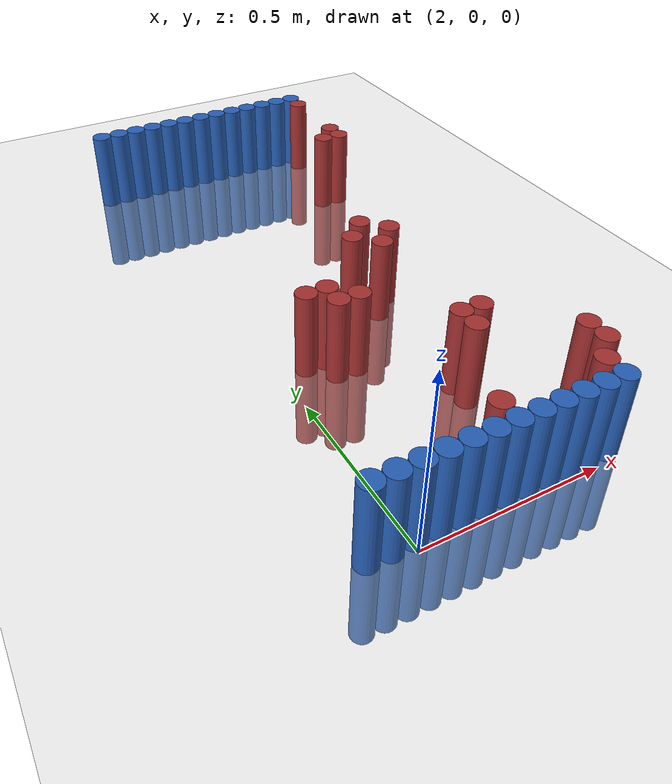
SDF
<sdf version="1.6">
 <world name="default">
  <model name="ground_plane">
   <static>1</static>
   <link name="link">
    <collision name="collision">
     <geometry><plane><normal>0 0 1</normal><size>100 100</size></plane></geometry>
     <surface><friction><ode><mu>100</mu><mu2>50</mu2></ode></friction></surface>
    </collision>
    <visual name="visual">
     <cast_shadows>0</cast_shadows>
     <geometry><plane><normal>0 0 1</normal><size>100 100</size></plane></geometry>
     <material>
      <script><uri>file://media/materials/scripts/gazebo.material</uri><name>Gazebo/Grey</name></script>
     </material>
    </visual>
   </link>
  </model>
  <model name="unit_cylinder_89">
   <static>1</static>
   <pose>1.890000 0.030000 0.000000 0.000000 0.000000 0.000000</pose>
   <link name="link">
    <inertial>
     <mass>1</mass>
     <inertia><ixx>0.145833</ixx><ixy>0</ixy><ixz>0</ixz><iyy>0.145833</iyy><iyz>0</iyz><izz>0.125</izz></inertia>
    </inertial>
    <collision name="collision">
     <geometry><cylinder><radius>0.030000</radius><length>0.5</length></cylinder></geometry>
    </collision>
    <visual name="visual">
     <geometry><cylinder><radius>0.030000</radius><length>0.5</length></cylinder></geometry>
     <material>
      <ambient>0.152000 0.379000 0.720000 1</ambient>
      <diffuse>0.152000 0.379000 0.720000 1</diffuse>
     </material>
     <material>
      <script><name>Gazebo/Grey</name><uri>file://media/materials/scripts/gazebo.material</uri></script>
     </material>
    </visual>
   </link>
  </model>
  <model name="unit_cylinder_90">
   <static>1</static>
   <pose>1.890000 1.770000 0.000000 0.000000 0.000000 0.000000</pose>
   <link name="link">
    <inertial>
     <mass>1</mass>
     <inertia><ixx>0.145833</ixx><ixy>0</ixy><ixz>0</ixz><iyy>0.145833</iyy><iyz>0</iyz><izz>0.125</izz></inertia>
    </inertial>
    <collision name="collision">
     <geometry><cylinder><radius>0.030000</radius><length>0.5</length></cylinder></geometry>
    </collision>
    <visual name="visual">
     <geometry><cylinder><radius>0.030000</radius><length>0.5</length></cylinder></geometry>
     <material>
      <ambient>0.152000 0.379000 0.720000 1</ambient>
      <diffuse>0.152000 0.379000 0.720000 1</diffuse>
     </material>
     <material>
      <script><name>Gazebo/Grey</name><uri>file://media/materials/scripts/gazebo.material</uri></script>
     </material>
    </visual>
   </link>
  </model>
  <model name="unit_cylinder_91">
   <static>1</static>
   <pose>1.950000 0.030000 0.000000 0.000000 0.000000 0.000000</pose>
   <link name="link">
    <inertial>
     <mass>1</mass>
     <inertia><ixx>0.145833</ixx><ixy>0</ixy><ixz>0</ixz><iyy>0.145833</iyy><iyz>0</iyz><izz>0.125</izz></inertia>
    </inertial>
    <collision name="collision">
     <geometry><cylinder><radius>0.030000</radius><length>0.5</length></cylinder></geometry>
    </collision>
    <visual name="visual">
     <geometry><cylinder><radius>0.030000</radius><length>0.5</length></cylinder></geometry>
     <material>
      <ambient>0.152000 0.379000 0.720000 1</ambient>
      <diffuse>0.152000 0.379000 0.720000 1</diffuse>
     </material>
     <material>
      <script><name>Gazebo/Grey</name><uri>file://media/materials/scripts/gazebo.material</uri></script>
     </material>
    </visual>
   </link>
  </model>
  <model name="unit_cylinder_92">
   <static>1</static>
   <pose>1.950000 1.770000 0.000000 0.000000 0.000000 0.000000</pose>
   <link name="link">
    <inertial>
     <mass>1</mass>
     <inertia><ixx>0.145833</ixx><ixy>0</ixy><ixz>0</ixz><iyy>0.145833</iyy><iyz>0</iyz><izz>0.125</izz></inertia>
    </inertial>
    <collision name="collision">
     <geometry><cylinder><radius>0.030000</radius><length>0.5</length></cylinder></geometry>
    </collision>
    <visual name="visual">
     <geometry><cylinder><radius>0.030000</radius><length>0.5</length></cylinder></geometry>
     <material>
      <ambient>0.152000 0.379000 0.720000 1</ambient>
      <diffuse>0.152000 0.379000 0.720000 1</diffuse>
     </material>
     <material>
      <script><name>Gazebo/Grey</name><uri>file://media/materials/scripts/gazebo.material</uri></script>
     </material>
    </visual>
   </link>
  </model>
  <model name="unit_cylinder_93">
   <static>1</static>
   <pose>2.010000 0.030000 0.000000 0.000000 0.000000 0.000000</pose>
   <link name="link">
    <inertial>
     <mass>1</mass>
     <inertia><ixx>0.145833</ixx><ixy>0</ixy><ixz>0</ixz><iyy>0.145833</iyy><iyz>0</iyz><izz>0.125</izz></inertia>
    </inertial>
    <collision name="collision">
     <geometry><cylinder><radius>0.030000</radius><length>0.5</length></cylinder></geometry>
    </collision>
    <visual name="visual">
     <geometry><cylinder><radius>0.030000</radius><length>0.5</length></cylinder></geometry>
     <material>
      <ambient>0.152000 0.379000 0.720000 1</ambient>
      <diffuse>0.152000 0.379000 0.720000 1</diffuse>
     </material>
     <material>
      <script><name>Gazebo/Grey</name><uri>file://media/materials/scripts/gazebo.material</uri></script>
     </material>
    </visual>
   </link>
  </model>
  <model name="unit_cylinder_94">
   <static>1</static>
   <pose>2.010000 1.770000 0.000000 0.000000 0.000000 0.000000</pose>
   <link name="link">
    <inertial>
     <mass>1</mass>
     <inertia><ixx>0.145833</ixx><ixy>0</ixy><ixz>0</ixz><iyy>0.145833</iyy><iyz>0</iyz><izz>0.125</izz></inertia>
    </inertial>
    <collision name="collision">
     <geometry><cylinder><radius>0.030000</radius><length>0.5</length></cylinder></geometry>
    </collision>
    <visual name="visual">
     <geometry><cylinder><radius>0.030000</radius><length>0.5</length></cylinder></geometry>
     <material>
      <ambient>0.152000 0.379000 0.720000 1</ambient>
      <diffuse>0.152000 0.379000 0.720000 1</diffuse>
     </material>
     <material>
      <script><name>Gazebo/Grey</name><uri>file://media/materials/scripts/gazebo.material</uri></script>
     </material>
    </visual>
   </link>
  </model>
  <model name="unit_cylinder_95">
   <static>1</static>
   <pose>2.070000 1.770000 0.000000 0.000000 0.000000 0.000000</pose>
   <link name="link">
    <inertial>
     <mass>1</mass>
     <inertia><ixx>0.145833</ixx><ixy>0</ixy><ixz>0</ixz><iyy>0.145833</iyy><iyz>0</iyz><izz>0.125</izz></inertia>
    </inertial>
    <collision name="collision">
     <geometry><cylinder><radius>0.030000</radius><length>0.5</length></cylinder></geometry>
    </collision>
    <visual name="visual">
     <geometry><cylinder><radius>0.030000</radius><length>0.5</length></cylinder></geometry>
     <material>
      <ambient>0.152000 0.379000 0.720000 1</ambient>
      <diffuse>0.152000 0.379000 0.720000 1</diffuse>
     </material>
     <material>
      <script><name>Gazebo/Grey</name><uri>file://media/materials/scripts/gazebo.material</uri></script>
     </material>
    </visual>
   </link>
  </model>
  <model name="unit_cylinder_96">
   <static>1</static>
   <pose>2.130000 1.770000 0.000000 0.000000 0.000000 0.000000</pose>
   <link name="link">
    <inertial>
     <mass>1</mass>
     <inertia><ixx>0.145833</ixx><ixy>0</ixy><ixz>0</ixz><iyy>0.145833</iyy><iyz>0</iyz><izz>0.125</izz></inertia>
    </inertial>
    <collision name="collision">
     <geometry><cylinder><radius>0.030000</radius><length>0.5</length></cylinder></geometry>
    </collision>
    <visual name="visual">
     <geometry><cylinder><radius>0.030000</radius><length>0.5</length></cylinder></geometry>
     <material>
      <ambient>0.152000 0.379000 0.720000 1</ambient>
      <diffuse>0.152000 0.379000 0.720000 1</diffuse>
     </material>
     <material>
      <script><name>Gazebo/Grey</name><uri>file://media/materials/scripts/gazebo.material</uri></script>
     </material>
    </visual>
   </link>
  </model>
  <model name="unit_cylinder_97">
   <static>1</static>
   <pose>2.190000 1.770000 0.000000 0.000000 0.000000 0.000000</pose>
   <link name="link">
    <inertial>
     <mass>1</mass>
     <inertia><ixx>0.145833</ixx><ixy>0</ixy><ixz>0</ixz><iyy>0.145833</iyy><iyz>0</iyz><izz>0.125</izz></inertia>
    </inertial>
    <collision name="collision">
     <geometry><cylinder><radius>0.030000</radius><length>0.5</length></cylinder></geometry>
    </collision>
    <visual name="visual">
     <geometry><cylinder><radius>0.030000</radius><length>0.5</length></cylinder></geometry>
     <material>
      <ambient>0.152000 0.379000 0.720000 1</ambient>
      <diffuse>0.152000 0.379000 0.720000 1</diffuse>
     </material>
     <material>
      <script><name>Gazebo/Grey</name><uri>file://media/materials/scripts/gazebo.material</uri></script>
     </material>
    </visual>
   </link>
  </model>
  <model name="unit_cylinder_98">
   <static>1</static>
   <pose>2.250000 1.770000 0.000000 0.000000 0.000000 0.000000</pose>
   <link name="link">
    <inertial>
     <mass>1</mass>
     <inertia><ixx>0.145833</ixx><ixy>0</ixy><ixz>0</ixz><iyy>0.145833</iyy><iyz>0</iyz><izz>0.125</izz></inertia>
    </inertial>
    <collision name="collision">
     <geometry><cylinder><radius>0.030000</radius><length>0.5</length></cylinder></geometry>
    </collision>
    <visual name="visual">
     <geometry><cylinder><radius>0.030000</radius><length>0.5</length></cylinder></geometry>
     <material>
      <ambient>0.152000 0.379000 0.720000 1</ambient>
      <diffuse>0.152000 0.379000 0.720000 1</diffuse>
     </material>
     <material>
      <script><name>Gazebo/Grey</name><uri>file://media/materials/scripts/gazebo.material</uri></script>
     </material>
    </visual>
   </link>
  </model>
  <model name="unit_cylinder_99">
   <static>1</static>
   <pose>2.310000 1.770000 0.000000 0.000000 0.000000 0.000000</pose>
   <link name="link">
    <inertial>
     <mass>1</mass>
     <inertia><ixx>0.145833</ixx><ixy>0</ixy><ixz>0</ixz><iyy>0.145833</iyy><iyz>0</iyz><izz>0.125</izz></inertia>
    </inertial>
    <collision name="collision">
     <geometry><cylinder><radius>0.030000</radius><length>0.5</length></cylinder></geometry>
    </collision>
    <visual name="visual">
     <geometry><cylinder><radius>0.030000</radius><length>0.5</length></cylinder></geometry>
     <material>
      <ambient>0.152000 0.379000 0.720000 1</ambient>
      <diffuse>0.152000 0.379000 0.720000 1</diffuse>
     </material>
     <material>
      <script><name>Gazebo/Grey</name><uri>file://media/materials/scripts/gazebo.material</uri></script>
     </material>
    </visual>
   </link>
  </model>
  <model name="unit_cylinder_100">
   <static>1</static>
   <pose>2.370000 1.770000 0.000000 0.000000 0.000000 0.000000</pose>
   <link name="link">
    <inertial>
     <mass>1</mass>
     <inertia><ixx>0.145833</ixx><ixy>0</ixy><ixz>0</ixz><iyy>0.145833</iyy><iyz>0</iyz><izz>0.125</izz></inertia>
    </inertial>
    <collision name="collision">
     <geometry><cylinder><radius>0.030000</radius><length>0.5</length></cylinder></geometry>
    </collision>
    <visual name="visual">
     <geometry><cylinder><radius>0.030000</radius><length>0.5</length></cylinder></geometry>
     <material>
      <ambient>0.152000 0.379000 0.720000 1</ambient>
      <diffuse>0.152000 0.379000 0.720000 1</diffuse>
     </material>
     <material>
      <script><name>Gazebo/Grey</name><uri>file://media/materials/scripts/gazebo.material</uri></script>
     </material>
    </visual>
   </link>
  </model>
  <model name="unit_cylinder_101">
   <static>1</static>
   <pose>2.430000 1.770000 0.000000 0.000000 0.000000 0.000000</pose>
   <link name="link">
    <inertial>
     <mass>1</mass>
     <inertia><ixx>0.145833</ixx><ixy>0</ixy><ixz>0</ixz><iyy>0.145833</iyy><iyz>0</iyz><izz>0.125</izz></inertia>
    </inertial>
    <collision name="collision">
     <geometry><cylinder><radius>0.030000</radius><length>0.5</length></cylinder></geometry>
    </collision>
    <visual name="visual">
     <geometry><cylinder><radius>0.030000</radius><length>0.5</length></cylinder></geometry>
     <material>
      <ambient>0.152000 0.379000 0.720000 1</ambient>
      <diffuse>0.152000 0.379000 0.720000 1</diffuse>
     </material>
     <material>
      <script><name>Gazebo/Grey</name><uri>file://media/materials/scripts/gazebo.material</uri></script>
     </material>
    </visual>
   </link>
  </model>
  <model name="unit_cylinder_102">
   <static>1</static>
   <pose>2.490000 1.770000 0.000000 0.000000 0.000000 0.000000</pose>
   <link name="link">
    <inertial>
     <mass>1</mass>
     <inertia><ixx>0.145833</ixx><ixy>0</ixy><ixz>0</ixz><iyy>0.145833</iyy><iyz>0</iyz><izz>0.125</izz></inertia>
    </inertial>
    <collision name="collision">
     <geometry><cylinder><radius>0.030000</radius><length>0.5</length></cylinder></geometry>
    </collision>
    <visual name="visual">
     <geometry><cylinder><radius>0.030000</radius><length>0.5</length></cylinder></geometry>
     <material>
      <ambient>0.152000 0.379000 0.720000 1</ambient>
      <diffuse>0.152000 0.379000 0.720000 1</diffuse>
     </material>
     <material>
      <script><name>Gazebo/Grey</name><uri>file://media/materials/scripts/gazebo.material</uri></script>
     </material>
    </visual>
   </link>
  </model>
  <model name="unit_cylinder_103">
   <static>1</static>
   <pose>2.550000 1.770000 0.000000 0.000000 0.000000 0.000000</pose>
   <link name="link">
    <inertial>
     <mass>1</mass>
     <inertia><ixx>0.145833</ixx><ixy>0</ixy><ixz>0</ixz><iyy>0.145833</iyy><iyz>0</iyz><izz>0.125</izz></inertia>
    </inertial>
    <collision name="collision">
     <geometry><cylinder><radius>0.030000</radius><length>0.5</length></cylinder></geometry>
    </collision>
    <visual name="visual">
     <geometry><cylinder><radius>0.030000</radius><length>0.5</length></cylinder></geometry>
     <material>
      <ambient>0.152000 0.379000 0.720000 1</ambient>
      <diffuse>0.152000 0.379000 0.720000 1</diffuse>
     </material>
     <material>
      <script><name>Gazebo/Grey</name><uri>file://media/materials/scripts/gazebo.material</uri></script>
     </material>
    </visual>
   </link>
  </model>
  <model name="unit_cylinder_104">
   <static>1</static>
   <pose>2.610000 1.770000 0.000000 0.000000 0.000000 0.000000</pose>
   <link name="link">
    <inertial>
     <mass>1</mass>
     <inertia><ixx>0.145833</ixx><ixy>0</ixy><ixz>0</ixz><iyy>0.145833</iyy><iyz>0</iyz><izz>0.125</izz></inertia>
    </inertial>
    <collision name="collision">
     <geometry><cylinder><radius>0.030000</radius><length>0.5</length></cylinder></geometry>
    </collision>
    <visual name="visual">
     <geometry><cylinder><radius>0.030000</radius><length>0.5</length></cylinder></geometry>
     <material>
      <ambient>0.152000 0.379000 0.720000 1</ambient>
      <diffuse>0.152000 0.379000 0.720000 1</diffuse>
     </material>
     <material>
      <script><name>Gazebo/Grey</name><uri>file://media/materials/scripts/gazebo.material</uri></script>
     </material>
    </visual>
   </link>
  </model>
  <model name="unit_cylinder_125">
   <static>1</static>
   <pose>2.610000 1.710000 0.000000 0.000000 0.000000 0.000000</pose>
   <link name="link">
    <inertial>
     <mass>1</mass>
     <inertia><ixx>0.145833</ixx><ixy>0</ixy><ixz>0</ixz><iyy>0.145833</iyy><iyz>0</iyz><izz>0.125</izz></inertia>
    </inertial>
    <collision name="collision">
     <geometry><cylinder><radius>0.030000</radius><length>0.5</length></cylinder></geometry>
    </collision>
    <visual name="visual">
     <geometry><cylinder><radius>0.030000</radius><length>0.5</length></cylinder></geometry>
     <material>
      <ambient>0.648000 0.192000 0.192000 1</ambient>
      <diffuse>0.648000 0.192000 0.192000 1</diffuse>
     </material>
     <material>
      <script><name>Gazebo/Grey</name><uri>file://media/materials/scripts/gazebo.material</uri></script>
     </material>
    </visual>
   </link>
  </model>
  <model name="unit_cylinder_138">
   <static>1</static>
   <pose>2.610000 1.470000 0.000000 0.000000 0.000000 0.000000</pose>
   <link name="link">
    <inertial>
     <mass>1</mass>
     <inertia><ixx>0.145833</ixx><ixy>0</ixy><ixz>0</ixz><iyy>0.145833</iyy><iyz>0</iyz><izz>0.125</izz></inertia>
    </inertial>
    <collision name="collision">
     <geometry><cylinder><radius>0.030000</radius><length>0.5</length></cylinder></geometry>
    </collision>
    <visual name="visual">
     <geometry><cylinder><radius>0.030000</radius><length>0.5</length></cylinder></geometry>
     <material>
      <ambient>0.648000 0.192000 0.192000 1</ambient>
      <diffuse>0.648000 0.192000 0.192000 1</diffuse>
     </material>
     <material>
      <script><name>Gazebo/Grey</name><uri>file://media/materials/scripts/gazebo.material</uri></script>
     </material>
    </visual>
   </link>
  </model>
  <model name="unit_cylinder_140">
   <static>1</static>
   <pose>2.550000 1.410000 0.000000 0.000000 0.000000 0.000000</pose>
   <link name="link">
    <inertial>
     <mass>1</mass>
     <inertia><ixx>0.145833</ixx><ixy>0</ixy><ixz>0</ixz><iyy>0.145833</iyy><iyz>0</iyz><izz>0.125</izz></inertia>
    </inertial>
    <collision name="collision">
     <geometry><cylinder><radius>0.030000</radius><length>0.5</length></cylinder></geometry>
    </collision>
    <visual name="visual">
     <geometry><cylinder><radius>0.030000</radius><length>0.5</length></cylinder></geometry>
     <material>
      <ambient>0.648000 0.192000 0.192000 1</ambient>
      <diffuse>0.648000 0.192000 0.192000 1</diffuse>
     </material>
     <material>
      <script><name>Gazebo/Grey</name><uri>file://media/materials/scripts/gazebo.material</uri></script>
     </material>
    </visual>
   </link>
  </model>
  <model name="unit_cylinder_141">
   <static>1</static>
   <pose>2.610000 1.410000 0.000000 0.000000 0.000000 0.000000</pose>
   <link name="link">
    <inertial>
     <mass>1</mass>
     <inertia><ixx>0.145833</ixx><ixy>0</ixy><ixz>0</ixz><iyy>0.145833</iyy><iyz>0</iyz><izz>0.125</izz></inertia>
    </inertial>
    <collision name="collision">
     <geometry><cylinder><radius>0.030000</radius><length>0.5</length></cylinder></geometry>
    </collision>
    <visual name="visual">
     <geometry><cylinder><radius>0.030000</radius><length>0.5</length></cylinder></geometry>
     <material>
      <ambient>0.648000 0.192000 0.192000 1</ambient>
      <diffuse>0.648000 0.192000 0.192000 1</diffuse>
     </material>
     <material>
      <script><name>Gazebo/Grey</name><uri>file://media/materials/scripts/gazebo.material</uri></script>
     </material>
    </visual>
   </link>
  </model>
  <model name="unit_cylinder_149">
   <static>1</static>
   <pose>2.370000 0.870000 0.000000 0.000000 0.000000 0.000000</pose>
   <link name="link">
    <inertial>
     <mass>1</mass>
     <inertia><ixx>0.145833</ixx><ixy>0</ixy><ixz>0</ixz><iyy>0.145833</iyy><iyz>0</iyz><izz>0.125</izz></inertia>
    </inertial>
    <collision name="collision">
     <geometry><cylinder><radius>0.030000</radius><length>0.5</length></cylinder></geometry>
    </collision>
    <visual name="visual">
     <geometry><cylinder><radius>0.030000</radius><length>0.5</length></cylinder></geometry>
     <material>
      <ambient>0.648000 0.192000 0.192000 1</ambient>
      <diffuse>0.648000 0.192000 0.192000 1</diffuse>
     </material>
     <material>
      <script><name>Gazebo/Grey</name><uri>file://media/materials/scripts/gazebo.material</uri></script>
     </material>
    </visual>
   </link>
  </model>
  <model name="unit_cylinder_150">
   <static>1</static>
   <pose>2.310000 0.810000 0.000000 0.000000 0.000000 0.000000</pose>
   <link name="link">
    <inertial>
     <mass>1</mass>
     <inertia><ixx>0.145833</ixx><ixy>0</ixy><ixz>0</ixz><iyy>0.145833</iyy><iyz>0</iyz><izz>0.125</izz></inertia>
    </inertial>
    <collision name="collision">
     <geometry><cylinder><radius>0.030000</radius><length>0.5</length></cylinder></geometry>
    </collision>
    <visual name="visual">
     <geometry><cylinder><radius>0.030000</radius><length>0.5</length></cylinder></geometry>
     <material>
      <ambient>0.648000 0.192000 0.192000 1</ambient>
      <diffuse>0.648000 0.192000 0.192000 1</diffuse>
     </material>
     <material>
      <script><name>Gazebo/Grey</name><uri>file://media/materials/scripts/gazebo.material</uri></script>
     </material>
    </visual>
   </link>
  </model>
  <model name="unit_cylinder_151">
   <static>1</static>
   <pose>2.430000 0.810000 0.000000 0.000000 0.000000 0.000000</pose>
   <link name="link">
    <inertial>
     <mass>1</mass>
     <inertia><ixx>0.145833</ixx><ixy>0</ixy><ixz>0</ixz><iyy>0.145833</iyy><iyz>0</iyz><izz>0.125</izz></inertia>
    </inertial>
    <collision name="collision">
     <geometry><cylinder><radius>0.030000</radius><length>0.5</length></cylinder></geometry>
    </collision>
    <visual name="visual">
     <geometry><cylinder><radius>0.030000</radius><length>0.5</length></cylinder></geometry>
     <material>
      <ambient>0.648000 0.192000 0.192000 1</ambient>
      <diffuse>0.648000 0.192000 0.192000 1</diffuse>
     </material>
     <material>
      <script><name>Gazebo/Grey</name><uri>file://media/materials/scripts/gazebo.material</uri></script>
     </material>
    </visual>
   </link>
  </model>
  <model name="unit_cylinder_153">
   <static>1</static>
   <pose>2.370000 0.750000 0.000000 0.000000 0.000000 0.000000</pose>
   <link name="link">
    <inertial>
     <mass>1</mass>
     <inertia><ixx>0.145833</ixx><ixy>0</ixy><ixz>0</ixz><iyy>0.145833</iyy><iyz>0</iyz><izz>0.125</izz></inertia>
    </inertial>
    <collision name="collision">
     <geometry><cylinder><radius>0.030000</radius><length>0.5</length></cylinder></geometry>
    </collision>
    <visual name="visual">
     <geometry><cylinder><radius>0.030000</radius><length>0.5</length></cylinder></geometry>
     <material>
      <ambient>0.648000 0.192000 0.192000 1</ambient>
      <diffuse>0.648000 0.192000 0.192000 1</diffuse>
     </material>
     <material>
      <script><name>Gazebo/Grey</name><uri>file://media/materials/scripts/gazebo.material</uri></script>
     </material>
    </visual>
   </link>
  </model>
  <model name="unit_cylinder_156">
   <static>1</static>
   <pose>2.070000 0.630000 0.000000 0.000000 0.000000 0.000000</pose>
   <link name="link">
    <inertial>
     <mass>1</mass>
     <inertia><ixx>0.145833</ixx><ixy>0</ixy><ixz>0</ixz><iyy>0.145833</iyy><iyz>0</iyz><izz>0.125</izz></inertia>
    </inertial>
    <collision name="collision">
     <geometry><cylinder><radius>0.030000</radius><length>0.5</length></cylinder></geometry>
    </collision>
    <visual name="visual">
     <geometry><cylinder><radius>0.030000</radius><length>0.5</length></cylinder></geometry>
     <material>
      <ambient>0.648000 0.192000 0.192000 1</ambient>
      <diffuse>0.648000 0.192000 0.192000 1</diffuse>
     </material>
     <material>
      <script><name>Gazebo/Grey</name><uri>file://media/materials/scripts/gazebo.material</uri></script>
     </material>
    </visual>
   </link>
  </model>
  <model name="unit_cylinder_157">
   <static>1</static>
   <pose>2.130000 0.630000 0.000000 0.000000 0.000000 0.000000</pose>
   <link name="link">
    <inertial>
     <mass>1</mass>
     <inertia><ixx>0.145833</ixx><ixy>0</ixy><ixz>0</ixz><iyy>0.145833</iyy><iyz>0</iyz><izz>0.125</izz></inertia>
    </inertial>
    <collision name="collision">
     <geometry><cylinder><radius>0.030000</radius><length>0.5</length></cylinder></geometry>
    </collision>
    <visual name="visual">
     <geometry><cylinder><radius>0.030000</radius><length>0.5</length></cylinder></geometry>
     <material>
      <ambient>0.648000 0.192000 0.192000 1</ambient>
      <diffuse>0.648000 0.192000 0.192000 1</diffuse>
     </material>
     <material>
      <script><name>Gazebo/Grey</name><uri>file://media/materials/scripts/gazebo.material</uri></script>
     </material>
    </visual>
   </link>
  </model>
  <model name="unit_cylinder_158">
   <static>1</static>
   <pose>2.130000 0.570000 0.000000 0.000000 0.000000 0.000000</pose>
   <link name="link">
    <inertial>
     <mass>1</mass>
     <inertia><ixx>0.145833</ixx><ixy>0</ixy><ixz>0</ixz><iyy>0.145833</iyy><iyz>0</iyz><izz>0.125</izz></inertia>
    </inertial>
    <collision name="collision">
     <geometry><cylinder><radius>0.030000</radius><length>0.5</length></cylinder></geometry>
    </collision>
    <visual name="visual">
     <geometry><cylinder><radius>0.030000</radius><length>0.5</length></cylinder></geometry>
     <material>
      <ambient>0.648000 0.192000 0.192000 1</ambient>
      <diffuse>0.648000 0.192000 0.192000 1</diffuse>
     </material>
     <material>
      <script><name>Gazebo/Grey</name><uri>file://media/materials/scripts/gazebo.material</uri></script>
     </material>
    </visual>
   </link>
  </model>
  <model name="unit_cylinder_159">
   <static>1</static>
   <pose>2.190000 0.570000 0.000000 0.000000 0.000000 0.000000</pose>
   <link name="link">
    <inertial>
     <mass>1</mass>
     <inertia><ixx>0.145833</ixx><ixy>0</ixy><ixz>0</ixz><iyy>0.145833</iyy><iyz>0</iyz><izz>0.125</izz></inertia>
    </inertial>
    <collision name="collision">
     <geometry><cylinder><radius>0.030000</radius><length>0.5</length></cylinder></geometry>
    </collision>
    <visual name="visual">
     <geometry><cylinder><radius>0.030000</radius><length>0.5</length></cylinder></geometry>
     <material>
      <ambient>0.648000 0.192000 0.192000 1</ambient>
      <diffuse>0.648000 0.192000 0.192000 1</diffuse>
     </material>
     <material>
      <script><name>Gazebo/Grey</name><uri>file://media/materials/scripts/gazebo.material</uri></script>
     </material>
    </visual>
   </link>
  </model>
  <model name="unit_cylinder_163">
   <static>1</static>
   <pose>2.370000 0.390000 0.000000 0.000000 0.000000 0.000000</pose>
   <link name="link">
    <inertial>
     <mass>1</mass>
     <inertia><ixx>0.145833</ixx><ixy>0</ixy><ixz>0</ixz><iyy>0.145833</iyy><iyz>0</iyz><izz>0.125</izz></inertia>
    </inertial>
    <collision name="collision">
     <geometry><cylinder><radius>0.030000</radius><length>0.5</length></cylinder></geometry>
    </collision>
    <visual name="visual">
     <geometry><cylinder><radius>0.030000</radius><length>0.5</length></cylinder></geometry>
     <material>
      <ambient>0.648000 0.192000 0.192000 1</ambient>
      <diffuse>0.648000 0.192000 0.192000 1</diffuse>
     </material>
     <material>
      <script><name>Gazebo/Grey</name><uri>file://media/materials/scripts/gazebo.material</uri></script>
     </material>
    </visual>
   </link>
  </model>
  <model name="unit_cylinder_164">
   <static>1</static>
   <pose>2.430000 0.390000 0.000000 0.000000 0.000000 0.000000</pose>
   <link name="link">
    <inertial>
     <mass>1</mass>
     <inertia><ixx>0.145833</ixx><ixy>0</ixy><ixz>0</ixz><iyy>0.145833</iyy><iyz>0</iyz><izz>0.125</izz></inertia>
    </inertial>
    <collision name="collision">
     <geometry><cylinder><radius>0.030000</radius><length>0.5</length></cylinder></geometry>
    </collision>
    <visual name="visual">
     <geometry><cylinder><radius>0.030000</radius><length>0.5</length></cylinder></geometry>
     <material>
      <ambient>0.648000 0.192000 0.192000 1</ambient>
      <diffuse>0.648000 0.192000 0.192000 1</diffuse>
     </material>
     <material>
      <script><name>Gazebo/Grey</name><uri>file://media/materials/scripts/gazebo.material</uri></script>
     </material>
    </visual>
   </link>
  </model>
  <model name="unit_cylinder_171">
   <static>1</static>
   <pose>2.370000 0.330000 0.000000 0.000000 0.000000 0.000000</pose>
   <link name="link">
    <inertial>
     <mass>1</mass>
     <inertia><ixx>0.145833</ixx><ixy>0</ixy><ixz>0</ixz><iyy>0.145833</iyy><iyz>0</iyz><izz>0.125</izz></inertia>
    </inertial>
    <collision name="collision">
     <geometry><cylinder><radius>0.030000</radius><length>0.5</length></cylinder></geometry>
    </collision>
    <visual name="visual">
     <geometry><cylinder><radius>0.030000</radius><length>0.5</length></cylinder></geometry>
     <material>
      <ambient>0.648000 0.192000 0.192000 1</ambient>
      <diffuse>0.648000 0.192000 0.192000 1</diffuse>
     </material>
     <material>
      <script><name>Gazebo/Grey</name><uri>file://media/materials/scripts/gazebo.material</uri></script>
     </material>
    </visual>
   </link>
  </model>
  <model name="unit_cylinder_176">
   <static>1</static>
   <pose>2.610000 0.210000 0.000000 0.000000 0.000000 0.000000</pose>
   <link name="link">
    <inertial>
     <mass>1</mass>
     <inertia><ixx>0.145833</ixx><ixy>0</ixy><ixz>0</ixz><iyy>0.145833</iyy><iyz>0</iyz><izz>0.125</izz></inertia>
    </inertial>
    <collision name="collision">
     <geometry><cylinder><radius>0.030000</radius><length>0.5</length></cylinder></geometry>
    </collision>
    <visual name="visual">
     <geometry><cylinder><radius>0.030000</radius><length>0.5</length></cylinder></geometry>
     <material>
      <ambient>0.648000 0.192000 0.192000 1</ambient>
      <diffuse>0.648000 0.192000 0.192000 1</diffuse>
     </material>
     <material>
      <script><name>Gazebo/Grey</name><uri>file://media/materials/scripts/gazebo.material</uri></script>
     </material>
    </visual>
   </link>
  </model>
  <model name="unit_cylinder_178">
   <static>1</static>
   <pose>2.610000 0.150000 0.000000 0.000000 0.000000 0.000000</pose>
   <link name="link">
    <inertial>
     <mass>1</mass>
     <inertia><ixx>0.145833</ixx><ixy>0</ixy><ixz>0</ixz><iyy>0.145833</iyy><iyz>0</iyz><izz>0.125</izz></inertia>
    </inertial>
    <collision name="collision">
     <geometry><cylinder><radius>0.030000</radius><length>0.5</length></cylinder></geometry>
    </collision>
    <visual name="visual">
     <geometry><cylinder><radius>0.030000</radius><length>0.5</length></cylinder></geometry>
     <material>
      <ambient>0.648000 0.192000 0.192000 1</ambient>
      <diffuse>0.648000 0.192000 0.192000 1</diffuse>
     </material>
     <material>
      <script><name>Gazebo/Grey</name><uri>file://media/materials/scripts/gazebo.material</uri></script>
     </material>
    </visual>
   </link>
  </model>
  <model name="unit_cylinder_181">
   <static>1</static>
   <pose>2.250000 0.090000 0.000000 0.000000 0.000000 0.000000</pose>
   <link name="link">
    <inertial>
     <mass>1</mass>
     <inertia><ixx>0.145833</ixx><ixy>0</ixy><ixz>0</ixz><iyy>0.145833</iyy><iyz>0</iyz><izz>0.125</izz></inertia>
    </inertial>
    <collision name="collision">
     <geometry><cylinder><radius>0.030000</radius><length>0.5</length></cylinder></geometry>
    </collision>
    <visual name="visual">
     <geometry><cylinder><radius>0.030000</radius><length>0.5</length></cylinder></geometry>
     <material>
      <ambient>0.648000 0.192000 0.192000 1</ambient>
      <diffuse>0.648000 0.192000 0.192000 1</diffuse>
     </material>
     <material>
      <script><name>Gazebo/Grey</name><uri>file://media/materials/scripts/gazebo.material</uri></script>
     </material>
    </visual>
   </link>
  </model>
  <model name="unit_cylinder_182">
   <static>1</static>
   <pose>2.550000 0.090000 0.000000 0.000000 0.000000 0.000000</pose>
   <link name="link">
    <inertial>
     <mass>1</mass>
     <inertia><ixx>0.145833</ixx><ixy>0</ixy><ixz>0</ixz><iyy>0.145833</iyy><iyz>0</iyz><izz>0.125</izz></inertia>
    </inertial>
    <collision name="collision">
     <geometry><cylinder><radius>0.030000</radius><length>0.5</length></cylinder></geometry>
    </collision>
    <visual name="visual">
     <geometry><cylinder><radius>0.030000</radius><length>0.5</length></cylinder></geometry>
     <material>
      <ambient>0.648000 0.192000 0.192000 1</ambient>
      <diffuse>0.648000 0.192000 0.192000 1</diffuse>
     </material>
     <material>
      <script><name>Gazebo/Grey</name><uri>file://media/materials/scripts/gazebo.material</uri></script>
     </material>
    </visual>
   </link>
  </model>
  <model name="unit_cylinder_192">
   <static>1</static>
   <pose>2.070000 0.030000 0.000000 0.000000 0.000000 0.000000</pose>
   <link name="link">
    <inertial>
     <mass>1</mass>
     <inertia><ixx>0.145833</ixx><ixy>0</ixy><ixz>0</ixz><iyy>0.145833</iyy><iyz>0</iyz><izz>0.125</izz></inertia>
    </inertial>
    <collision name="collision">
     <geometry><cylinder><radius>0.030000</radius><length>0.5</length></cylinder></geometry>
    </collision>
    <visual name="visual">
     <geometry><cylinder><radius>0.030000</radius><length>0.5</length></cylinder></geometry>
     <material>
      <ambient>0.152000 0.379000 0.720000 1</ambient>
      <diffuse>0.152000 0.379000 0.720000 1</diffuse>
     </material>
     <material>
      <script><name>Gazebo/Grey</name><uri>file://media/materials/scripts/gazebo.material</uri></script>
     </material>
    </visual>
   </link>
  </model>
  <model name="unit_cylinder_193">
   <static>1</static>
   <pose>2.130000 0.030000 0.000000 0.000000 0.000000 0.000000</pose>
   <link name="link">
    <inertial>
     <mass>1</mass>
     <inertia><ixx>0.145833</ixx><ixy>0</ixy><ixz>0</ixz><iyy>0.145833</iyy><iyz>0</iyz><izz>0.125</izz></inertia>
    </inertial>
    <collision name="collision">
     <geometry><cylinder><radius>0.030000</radius><length>0.5</length></cylinder></geometry>
    </collision>
    <visual name="visual">
     <geometry><cylinder><radius>0.030000</radius><length>0.5</length></cylinder></geometry>
     <material>
      <ambient>0.152000 0.379000 0.720000 1</ambient>
      <diffuse>0.152000 0.379000 0.720000 1</diffuse>
     </material>
     <material>
      <script><name>Gazebo/Grey</name><uri>file://media/materials/scripts/gazebo.material</uri></script>
     </material>
    </visual>
   </link>
  </model>
  <model name="unit_cylinder_194">
   <static>1</static>
   <pose>2.190000 0.030000 0.000000 0.000000 0.000000 0.000000</pose>
   <link name="link">
    <inertial>
     <mass>1</mass>
     <inertia><ixx>0.145833</ixx><ixy>0</ixy><ixz>0</ixz><iyy>0.145833</iyy><iyz>0</iyz><izz>0.125</izz></inertia>
    </inertial>
    <collision name="collision">
     <geometry><cylinder><radius>0.030000</radius><length>0.5</length></cylinder></geometry>
    </collision>
    <visual name="visual">
     <geometry><cylinder><radius>0.030000</radius><length>0.5</length></cylinder></geometry>
     <material>
      <ambient>0.152000 0.379000 0.720000 1</ambient>
      <diffuse>0.152000 0.379000 0.720000 1</diffuse>
     </material>
     <material>
      <script><name>Gazebo/Grey</name><uri>file://media/materials/scripts/gazebo.material</uri></script>
     </material>
    </visual>
   </link>
  </model>
  <model name="unit_cylinder_195">
   <static>1</static>
   <pose>2.250000 0.030000 0.000000 0.000000 0.000000 0.000000</pose>
   <link name="link">
    <inertial>
     <mass>1</mass>
     <inertia><ixx>0.145833</ixx><ixy>0</ixy><ixz>0</ixz><iyy>0.145833</iyy><iyz>0</iyz><izz>0.125</izz></inertia>
    </inertial>
    <collision name="collision">
     <geometry><cylinder><radius>0.030000</radius><length>0.5</length></cylinder></geometry>
    </collision>
    <visual name="visual">
     <geometry><cylinder><radius>0.030000</radius><length>0.5</length></cylinder></geometry>
     <material>
      <ambient>0.152000 0.379000 0.720000 1</ambient>
      <diffuse>0.152000 0.379000 0.720000 1</diffuse>
     </material>
     <material>
      <script><name>Gazebo/Grey</name><uri>file://media/materials/scripts/gazebo.material</uri></script>
     </material>
    </visual>
   </link>
  </model>
  <model name="unit_cylinder_196">
   <static>1</static>
   <pose>2.310000 0.030000 0.000000 0.000000 0.000000 0.000000</pose>
   <link name="link">
    <inertial>
     <mass>1</mass>
     <inertia><ixx>0.145833</ixx><ixy>0</ixy><ixz>0</ixz><iyy>0.145833</iyy><iyz>0</iyz><izz>0.125</izz></inertia>
    </inertial>
    <collision name="collision">
     <geometry><cylinder><radius>0.030000</radius><length>0.5</length></cylinder></geometry>
    </collision>
    <visual name="visual">
     <geometry><cylinder><radius>0.030000</radius><length>0.5</length></cylinder></geometry>
     <material>
      <ambient>0.152000 0.379000 0.720000 1</ambient>
      <diffuse>0.152000 0.379000 0.720000 1</diffuse>
     </material>
     <material>
      <script><name>Gazebo/Grey</name><uri>file://media/materials/scripts/gazebo.material</uri></script>
     </material>
    </visual>
   </link>
  </model>
  <model name="unit_cylinder_197">
   <static>1</static>
   <pose>2.370000 0.030000 0.000000 0.000000 0.000000 0.000000</pose>
   <link name="link">
    <inertial>
     <mass>1</mass>
     <inertia><ixx>0.145833</ixx><ixy>0</ixy><ixz>0</ixz><iyy>0.145833</iyy><iyz>0</iyz><izz>0.125</izz></inertia>
    </inertial>
    <collision name="collision">
     <geometry><cylinder><radius>0.030000</radius><length>0.5</length></cylinder></geometry>
    </collision>
    <visual name="visual">
     <geometry><cylinder><radius>0.030000</radius><length>0.5</length></cylinder></geometry>
     <material>
      <ambient>0.152000 0.379000 0.720000 1</ambient>
      <diffuse>0.152000 0.379000 0.720000 1</diffuse>
     </material>
     <material>
      <script><name>Gazebo/Grey</name><uri>file://media/materials/scripts/gazebo.material</uri></script>
     </material>
    </visual>
   </link>
  </model>
  <model name="unit_cylinder_198">
   <static>1</static>
   <pose>2.430000 0.030000 0.000000 0.000000 0.000000 0.000000</pose>
   <link name="link">
    <inertial>
     <mass>1</mass>
     <inertia><ixx>0.145833</ixx><ixy>0</ixy><ixz>0</ixz><iyy>0.145833</iyy><iyz>0</iyz><izz>0.125</izz></inertia>
    </inertial>
    <collision name="collision">
     <geometry><cylinder><radius>0.030000</radius><length>0.5</length></cylinder></geometry>
    </collision>
    <visual name="visual">
     <geometry><cylinder><radius>0.030000</radius><length>0.5</length></cylinder></geometry>
     <material>
      <ambient>0.152000 0.379000 0.720000 1</ambient>
      <diffuse>0.152000 0.379000 0.720000 1</diffuse>
     </material>
     <material>
      <script><name>Gazebo/Grey</name><uri>file://media/materials/scripts/gazebo.material</uri></script>
     </material>
    </visual>
   </link>
  </model>
  <model name="unit_cylinder_199">
   <static>1</static>
   <pose>2.490000 0.030000 0.000000 0.000000 0.000000 0.000000</pose>
   <link name="link">
    <inertial>
     <mass>1</mass>
     <inertia><ixx>0.145833</ixx><ixy>0</ixy><ixz>0</ixz><iyy>0.145833</iyy><iyz>0</iyz><izz>0.125</izz></inertia>
    </inertial>
    <collision name="collision">
     <geometry><cylinder><radius>0.030000</radius><length>0.5</length></cylinder></geometry>
    </collision>
    <visual name="visual">
     <geometry><cylinder><radius>0.030000</radius><length>0.5</length></cylinder></geometry>
     <material>
      <ambient>0.152000 0.379000 0.720000 1</ambient>
      <diffuse>0.152000 0.379000 0.720000 1</diffuse>
     </material>
     <material>
      <script><name>Gazebo/Grey</name><uri>file://media/materials/scripts/gazebo.material</uri></script>
     </material>
    </visual>
   </link>
  </model>
  <model name="unit_cylinder_200">
   <static>1</static>
   <pose>2.550000 0.030000 0.000000 0.000000 0.000000 0.000000</pose>
   <link name="link">
    <inertial>
     <mass>1</mass>
     <inertia><ixx>0.145833</ixx><ixy>0</ixy><ixz>0</ixz><iyy>0.145833</iyy><iyz>0</iyz><izz>0.125</izz></inertia>
    </inertial>
    <collision name="collision">
     <geometry><cylinder><radius>0.030000</radius><length>0.5</length></cylinder></geometry>
    </collision>
    <visual name="visual">
     <geometry><cylinder><radius>0.030000</radius><length>0.5</length></cylinder></geometry>
     <material>
      <ambient>0.152000 0.379000 0.720000 1</ambient>
      <diffuse>0.152000 0.379000 0.720000 1</diffuse>
     </material>
     <material>
      <script><name>Gazebo/Grey</name><uri>file://media/materials/scripts/gazebo.material</uri></script>
     </material>
    </visual>
   </link>
  </model>
 </world>
</sdf>
